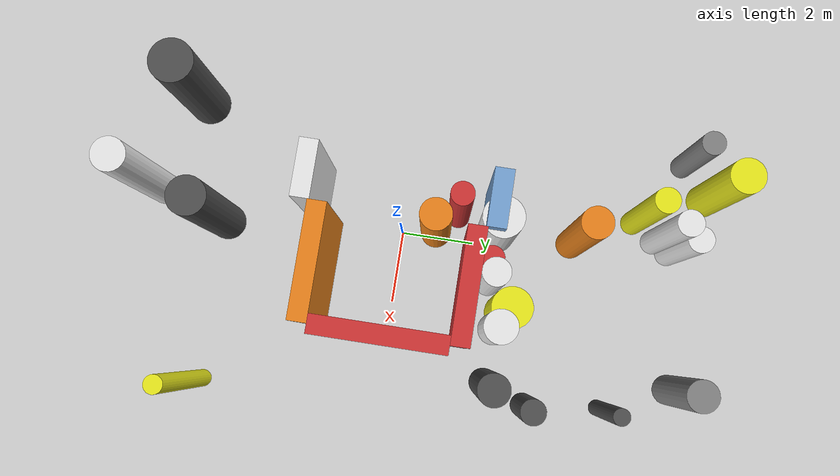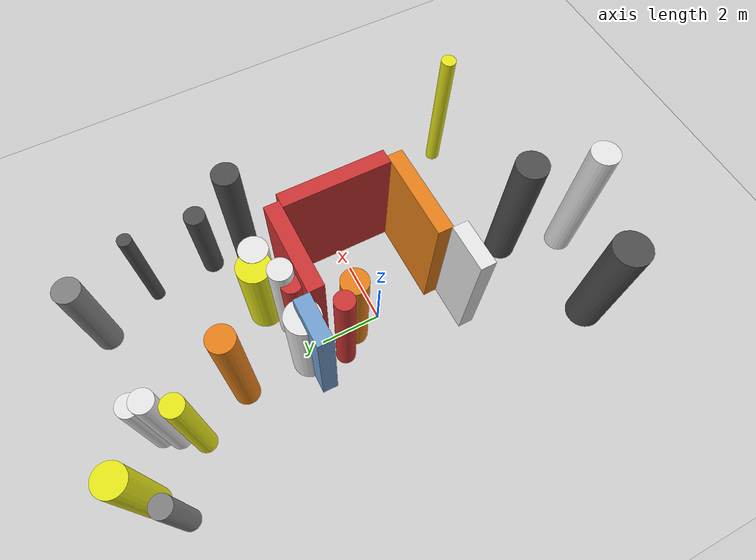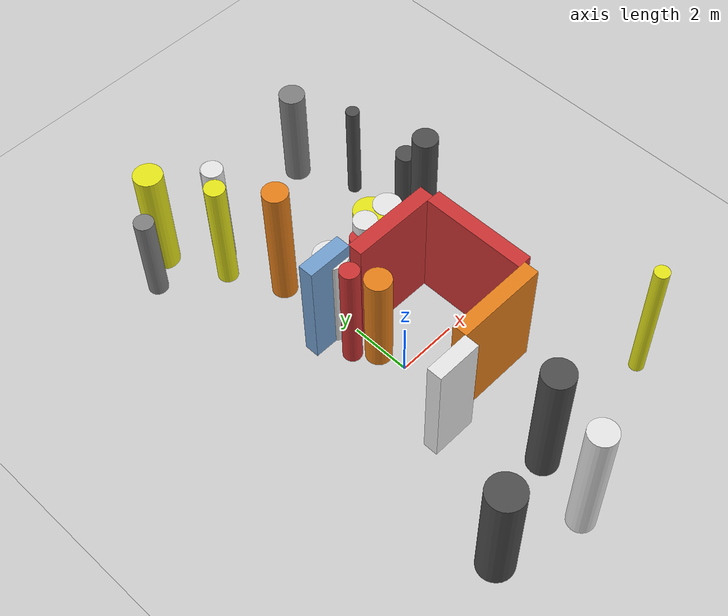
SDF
<?xml version='1.0'?>
<sdf version='1.6'>
  <world name='routeA_rl_v1__dense_recovery__rl_train__cul_de_sac_trap__000080'>
    <!-- Sun light -->
    <light name='sun' type='directional'>
      <cast_shadows>1</cast_shadows>
      <pose>0 0 10 0 0 0</pose>
      <diffuse>0.8 0.8 0.8 1</diffuse>
      <specular>0.2 0.2 0.2 1</specular>
      <attenuation>
        <range>1000</range>
        <constant>0.9</constant>
        <linear>0.01</linear>
        <quadratic>0.001</quadratic>
      </attenuation>
      <direction>-0.5 0.1 -0.9</direction>
    </light>

    <!-- Ground plane -->
    <model name='ground_plane'>
      <static>1</static>
      <link name='link'>
        <collision name='collision'>
          <geometry>
            <plane>
              <normal>0 0 1</normal>
              <size>100 100</size>
            </plane>
          </geometry>
          <surface>
            <contact>
              <collide_bitmask>65535</collide_bitmask>
              <ode/>
            </contact>
            <friction>
              <ode>
                <mu>100</mu>
                <mu2>50</mu2>
              </ode>
              <torsional><ode/></torsional>
            </friction>
            <bounce/>
          </surface>
          <max_contacts>10</max_contacts>
        </collision>
        <visual name='visual'>
          <cast_shadows>0</cast_shadows>
          <geometry>
            <plane>
              <normal>0 0 1</normal>
              <size>100 100</size>
            </plane>
          </geometry>
          <material>
            <script>
              <uri>file://media/materials/scripts/gazebo.material</uri>
              <n>Gazebo/Grey</n>
            </script>
          </material>
        </visual>
      </link>
    </model>

    <!-- Environment -->
    <magnetic_field>6e-06 2.3e-05 -4.2e-05</magnetic_field>
    <atmosphere type='adiabatic'/>
    <physics name='default_physics' default='0' type='ode'>
      <gravity>0 0 -9.8</gravity>
      <max_step_size>0.004</max_step_size>
      <real_time_factor>1</real_time_factor>
      <real_time_update_rate>250</real_time_update_rate>
    </physics>
    <scene>
      <ambient>0.4 0.4 0.4 1</ambient>
      <background>0.7 0.7 0.7 1</background>
      <shadows>1</shadows>
    </scene>
    <wind/>
    <spherical_coordinates>
      <surface_model>EARTH_WGS84</surface_model>
      <latitude_deg>0</latitude_deg>
      <longitude_deg>0</longitude_deg>
      <elevation>0</elevation>
      <heading_deg>0</heading_deg>
    </spherical_coordinates>

    <!-- ============ OBSTACLES (26) ============ -->
    <model name='trap_side_l'>
      <static>1</static>
      <link name='link'>
        <visual name='visual'>
          <geometry>
            <box>
              <size>3.0000 0.5000 4.0000</size>
            </box>
          </geometry>
          <material>
            <script>
              <n>Gazebo/Orange</n>
              <uri>file://media/materials/scripts/gazebo.material</uri>
            </script>
            <ambient>0.9 0.5 0.1 1</ambient>
          </material>
        </visual>
        <collision name='collision'>
          <geometry>
            <box>
              <size>3.0000 0.5000 4.0000</size>
            </box>
          </geometry>
          <max_contacts>10</max_contacts>
          <surface>
            <contact><ode/></contact>
            <bounce/>
            <friction>
              <ode><mu>1</mu><mu2>1</mu2></ode>
              <torsional><ode/></torsional>
            </friction>
          </surface>
        </collision>
      </link>
      <pose>1.5000 -2.0000 2.0000 0 0 0.0000</pose>
    </model>

    <model name='trap_side_r'>
      <static>1</static>
      <link name='link'>
        <visual name='visual'>
          <geometry>
            <box>
              <size>3.0000 0.5000 4.0000</size>
            </box>
          </geometry>
          <material>
            <script>
              <n>Gazebo/Red</n>
              <uri>file://media/materials/scripts/gazebo.material</uri>
            </script>
            <ambient>0.8 0.2 0.2 1</ambient>
          </material>
        </visual>
        <collision name='collision'>
          <geometry>
            <box>
              <size>3.0000 0.5000 4.0000</size>
            </box>
          </geometry>
          <max_contacts>10</max_contacts>
          <surface>
            <contact><ode/></contact>
            <bounce/>
            <friction>
              <ode><mu>1</mu><mu2>1</mu2></ode>
              <torsional><ode/></torsional>
            </friction>
          </surface>
        </collision>
      </link>
      <pose>1.5000 2.0000 2.0000 0 0 0.0000</pose>
    </model>

    <model name='trap_back'>
      <static>1</static>
      <link name='link'>
        <visual name='visual'>
          <geometry>
            <box>
              <size>0.5000 3.5000 4.0000</size>
            </box>
          </geometry>
          <material>
            <script>
              <n>Gazebo/Red</n>
              <uri>file://media/materials/scripts/gazebo.material</uri>
            </script>
            <ambient>0.8 0.2 0.2 1</ambient>
          </material>
        </visual>
        <collision name='collision'>
          <geometry>
            <box>
              <size>0.5000 3.5000 4.0000</size>
            </box>
          </geometry>
          <max_contacts>10</max_contacts>
          <surface>
            <contact><ode/></contact>
            <bounce/>
            <friction>
              <ode><mu>1</mu><mu2>1</mu2></ode>
              <torsional><ode/></torsional>
            </friction>
          </surface>
        </collision>
      </link>
      <pose>3.0000 0.0000 2.0000 0 0 0.0000</pose>
    </model>

    <model name='trap_funnel_l'>
      <static>1</static>
      <link name='link'>
        <visual name='visual'>
          <geometry>
            <box>
              <size>1.5000 0.5000 4.0000</size>
            </box>
          </geometry>
          <material>
            <script>
              <n>Gazebo/White</n>
              <uri>file://media/materials/scripts/gazebo.material</uri>
            </script>
            <ambient>0.9 0.9 0.9 1</ambient>
          </material>
        </visual>
        <collision name='collision'>
          <geometry>
            <box>
              <size>1.5000 0.5000 4.0000</size>
            </box>
          </geometry>
          <max_contacts>10</max_contacts>
          <surface>
            <contact><ode/></contact>
            <bounce/>
            <friction>
              <ode><mu>1</mu><mu2>1</mu2></ode>
              <torsional><ode/></torsional>
            </friction>
          </surface>
        </collision>
      </link>
      <pose>-0.7500 -2.4500 2.0000 0 0 0.0000</pose>
    </model>

    <model name='trap_funnel_r'>
      <static>1</static>
      <link name='link'>
        <visual name='visual'>
          <geometry>
            <box>
              <size>1.5000 0.5000 4.0000</size>
            </box>
          </geometry>
          <material>
            <script>
              <n>Gazebo/Blue</n>
              <uri>file://media/materials/scripts/gazebo.material</uri>
            </script>
            <ambient>0.447 0.624 0.812 1</ambient>
          </material>
        </visual>
        <collision name='collision'>
          <geometry>
            <box>
              <size>1.5000 0.5000 4.0000</size>
            </box>
          </geometry>
          <max_contacts>10</max_contacts>
          <surface>
            <contact><ode/></contact>
            <bounce/>
            <friction>
              <ode><mu>1</mu><mu2>1</mu2></ode>
              <torsional><ode/></torsional>
            </friction>
          </surface>
        </collision>
      </link>
      <pose>-0.7500 2.4500 2.0000 0 0 0.0000</pose>
    </model>

    <model name='trap_scatter_0'>
      <static>1</static>
      <link name='link'>
        <visual name='visual'>
          <geometry>
            <cylinder>
              <radius>0.4381</radius>
              <length>4.7769</length>
            </cylinder>
          </geometry>
          <material>
            <script>
              <n>Gazebo/White</n>
              <uri>file://media/materials/scripts/gazebo.material</uri>
            </script>
            <ambient>0.9 0.9 0.9 1</ambient>
          </material>
        </visual>
        <collision name='collision'>
          <geometry>
            <cylinder>
              <radius>0.4381</radius>
              <length>4.7769</length>
            </cylinder>
          </geometry>
          <max_contacts>10</max_contacts>
          <surface>
            <contact><ode/></contact>
            <bounce/>
            <friction>
              <ode><mu>1</mu><mu2>1</mu2></ode>
              <torsional><ode/></torsional>
            </friction>
          </surface>
        </collision>
      </link>
      <pose>-0.2213 -6.9779 2.3885 0 0 0.0000</pose>
    </model>

    <model name='trap_scatter_2'>
      <static>1</static>
      <link name='link'>
        <visual name='visual'>
          <geometry>
            <cylinder>
              <radius>0.3702</radius>
              <length>3.8663</length>
            </cylinder>
          </geometry>
          <material>
            <script>
              <n>Gazebo/White</n>
              <uri>file://media/materials/scripts/gazebo.material</uri>
            </script>
            <ambient>0.9 0.9 0.9 1</ambient>
          </material>
        </visual>
        <collision name='collision'>
          <geometry>
            <cylinder>
              <radius>0.3702</radius>
              <length>3.8663</length>
            </cylinder>
          </geometry>
          <max_contacts>10</max_contacts>
          <surface>
            <contact><ode/></contact>
            <bounce/>
            <friction>
              <ode><mu>1</mu><mu2>1</mu2></ode>
              <torsional><ode/></torsional>
            </friction>
          </surface>
        </collision>
      </link>
      <pose>1.0540 2.6164 1.9332 0 0 0.0000</pose>
    </model>

    <model name='trap_scatter_4'>
      <static>1</static>
      <link name='link'>
        <visual name='visual'>
          <geometry>
            <cylinder>
              <radius>0.4167</radius>
              <length>3.5565</length>
            </cylinder>
          </geometry>
          <material>
            <script>
              <n>Gazebo/Grey</n>
              <uri>file://media/materials/scripts/gazebo.material</uri>
            </script>
            <ambient>0.5 0.5 0.5 1</ambient>
          </material>
        </visual>
        <collision name='collision'>
          <geometry>
            <cylinder>
              <radius>0.4167</radius>
              <length>3.5565</length>
            </cylinder>
          </geometry>
          <max_contacts>10</max_contacts>
          <surface>
            <contact><ode/></contact>
            <bounce/>
            <friction>
              <ode><mu>1</mu><mu2>1</mu2></ode>
              <torsional><ode/></torsional>
            </friction>
          </surface>
        </collision>
      </link>
      <pose>3.2689 8.0449 1.7782 0 0 0.0000</pose>
    </model>

    <model name='trap_scatter_5'>
      <static>1</static>
      <link name='link'>
        <visual name='visual'>
          <geometry>
            <cylinder>
              <radius>0.5015</radius>
              <length>4.6057</length>
            </cylinder>
          </geometry>
          <material>
            <script>
              <n>Gazebo/DarkGrey</n>
              <uri>file://media/materials/scripts/gazebo.material</uri>
            </script>
            <ambient>0.3 0.3 0.3 1</ambient>
          </material>
        </visual>
        <collision name='collision'>
          <geometry>
            <cylinder>
              <radius>0.5015</radius>
              <length>4.6057</length>
            </cylinder>
          </geometry>
          <max_contacts>10</max_contacts>
          <surface>
            <contact><ode/></contact>
            <bounce/>
            <friction>
              <ode><mu>1</mu><mu2>1</mu2></ode>
              <torsional><ode/></torsional>
            </friction>
          </surface>
        </collision>
      </link>
      <pose>0.4549 -5.0151 2.3029 0 0 0.0000</pose>
    </model>

    <model name='trap_scatter_6'>
      <static>1</static>
      <link name='link'>
        <visual name='visual'>
          <geometry>
            <cylinder>
              <radius>0.4063</radius>
              <length>4.5648</length>
            </cylinder>
          </geometry>
          <material>
            <script>
              <n>Gazebo/Orange</n>
              <uri>file://media/materials/scripts/gazebo.material</uri>
            </script>
            <ambient>0.9 0.5 0.1 1</ambient>
          </material>
        </visual>
        <collision name='collision'>
          <geometry>
            <cylinder>
              <radius>0.4063</radius>
              <length>4.5648</length>
            </cylinder>
          </geometry>
          <max_contacts>10</max_contacts>
          <surface>
            <contact><ode/></contact>
            <bounce/>
            <friction>
              <ode><mu>1</mu><mu2>1</mu2></ode>
              <torsional><ode/></torsional>
            </friction>
          </surface>
        </collision>
      </link>
      <pose>-0.4075 4.7852 2.2824 0 0 0.0000</pose>
    </model>

    <model name='trap_scatter_7'>
      <static>1</static>
      <link name='link'>
        <visual name='visual'>
          <geometry>
            <cylinder>
              <radius>0.4586</radius>
              <length>3.9629</length>
            </cylinder>
          </geometry>
          <material>
            <script>
              <n>Gazebo/Yellow</n>
              <uri>file://media/materials/scripts/gazebo.material</uri>
            </script>
            <ambient>0.9 0.9 0.1 1</ambient>
          </material>
        </visual>
        <collision name='collision'>
          <geometry>
            <cylinder>
              <radius>0.4586</radius>
              <length>3.9629</length>
            </cylinder>
          </geometry>
          <max_contacts>10</max_contacts>
          <surface>
            <contact><ode/></contact>
            <bounce/>
            <friction>
              <ode><mu>1</mu><mu2>1</mu2></ode>
              <torsional><ode/></torsional>
            </friction>
          </surface>
        </collision>
      </link>
      <pose>-2.2254 8.3902 1.9815 0 0 0.0000</pose>
    </model>

    <model name='trap_scatter_8'>
      <static>1</static>
      <link name='link'>
        <visual name='visual'>
          <geometry>
            <cylinder>
              <radius>0.5779</radius>
              <length>4.1593</length>
            </cylinder>
          </geometry>
          <material>
            <script>
              <n>Gazebo/DarkGrey</n>
              <uri>file://media/materials/scripts/gazebo.material</uri>
            </script>
            <ambient>0.3 0.3 0.3 1</ambient>
          </material>
        </visual>
        <collision name='collision'>
          <geometry>
            <cylinder>
              <radius>0.5779</radius>
              <length>4.1593</length>
            </cylinder>
          </geometry>
          <max_contacts>10</max_contacts>
          <surface>
            <contact><ode/></contact>
            <bounce/>
            <friction>
              <ode><mu>1</mu><mu2>1</mu2></ode>
              <torsional><ode/></torsional>
            </friction>
          </surface>
        </collision>
      </link>
      <pose>-2.8743 -6.1476 2.0796 0 0 0.0000</pose>
    </model>

    <model name='trap_scatter_9'>
      <static>1</static>
      <link name='link'>
        <visual name='visual'>
          <geometry>
            <cylinder>
              <radius>0.3395</radius>
              <length>4.0798</length>
            </cylinder>
          </geometry>
          <material>
            <script>
              <n>Gazebo/White</n>
              <uri>file://media/materials/scripts/gazebo.material</uri>
            </script>
            <ambient>0.9 0.9 0.9 1</ambient>
          </material>
        </visual>
        <collision name='collision'>
          <geometry>
            <cylinder>
              <radius>0.3395</radius>
              <length>4.0798</length>
            </cylinder>
          </geometry>
          <max_contacts>10</max_contacts>
          <surface>
            <contact><ode/></contact>
            <bounce/>
            <friction>
              <ode><mu>1</mu><mu2>1</mu2></ode>
              <torsional><ode/></torsional>
            </friction>
          </surface>
        </collision>
      </link>
      <pose>-0.8215 7.1094 2.0399 0 0 0.0000</pose>
    </model>

    <model name='trap_scatter_11'>
      <static>1</static>
      <link name='link'>
        <visual name='visual'>
          <geometry>
            <cylinder>
              <radius>0.3188</radius>
              <length>3.5075</length>
            </cylinder>
          </geometry>
          <material>
            <script>
              <n>Gazebo/Red</n>
              <uri>file://media/materials/scripts/gazebo.material</uri>
            </script>
            <ambient>0.8 0.2 0.2 1</ambient>
          </material>
        </visual>
        <collision name='collision'>
          <geometry>
            <cylinder>
              <radius>0.3188</radius>
              <length>3.5075</length>
            </cylinder>
          </geometry>
          <max_contacts>10</max_contacts>
          <surface>
            <contact><ode/></contact>
            <bounce/>
            <friction>
              <ode><mu>1</mu><mu2>1</mu2></ode>
              <torsional><ode/></torsional>
            </friction>
          </surface>
        </collision>
      </link>
      <pose>0.6967 2.4771 1.7537 0 0 0.0000</pose>
    </model>

    <model name='trap_scatter_12'>
      <static>1</static>
      <link name='link'>
        <visual name='visual'>
          <geometry>
            <cylinder>
              <radius>0.5378</radius>
              <length>3.1844</length>
            </cylinder>
          </geometry>
          <material>
            <script>
              <n>Gazebo/Yellow</n>
              <uri>file://media/materials/scripts/gazebo.material</uri>
            </script>
            <ambient>0.9 0.9 0.1 1</ambient>
          </material>
        </visual>
        <collision name='collision'>
          <geometry>
            <cylinder>
              <radius>0.5378</radius>
              <length>3.1844</length>
            </cylinder>
          </geometry>
          <max_contacts>10</max_contacts>
          <surface>
            <contact><ode/></contact>
            <bounce/>
            <friction>
              <ode><mu>1</mu><mu2>1</mu2></ode>
              <torsional><ode/></torsional>
            </friction>
          </surface>
        </collision>
      </link>
      <pose>1.8238 3.1675 1.5922 0 0 0.0000</pose>
    </model>

    <model name='trap_scatter_13'>
      <static>1</static>
      <link name='link'>
        <visual name='visual'>
          <geometry>
            <cylinder>
              <radius>0.5446</radius>
              <length>3.5448</length>
            </cylinder>
          </geometry>
          <material>
            <script>
              <n>Gazebo/White</n>
              <uri>file://media/materials/scripts/gazebo.material</uri>
            </script>
            <ambient>0.9 0.9 0.9 1</ambient>
          </material>
        </visual>
        <collision name='collision'>
          <geometry>
            <cylinder>
              <radius>0.5446</radius>
              <length>3.5448</length>
            </cylinder>
          </geometry>
          <max_contacts>10</max_contacts>
          <surface>
            <contact><ode/></contact>
            <bounce/>
            <friction>
              <ode><mu>1</mu><mu2>1</mu2></ode>
              <torsional><ode/></torsional>
            </friction>
          </surface>
        </collision>
      </link>
      <pose>-0.3639 2.6142 1.7724 0 0 0.0000</pose>
    </model>

    <model name='trap_scatter_14'>
      <static>1</static>
      <link name='link'>
        <visual name='visual'>
          <geometry>
            <cylinder>
              <radius>0.4215</radius>
              <length>3.7413</length>
            </cylinder>
          </geometry>
          <material>
            <script>
              <n>Gazebo/Orange</n>
              <uri>file://media/materials/scripts/gazebo.material</uri>
            </script>
            <ambient>0.9 0.5 0.1 1</ambient>
          </material>
        </visual>
        <collision name='collision'>
          <geometry>
            <cylinder>
              <radius>0.4215</radius>
              <length>3.7413</length>
            </cylinder>
          </geometry>
          <max_contacts>10</max_contacts>
          <surface>
            <contact><ode/></contact>
            <bounce/>
            <friction>
              <ode><mu>1</mu><mu2>1</mu2></ode>
              <torsional><ode/></torsional>
            </friction>
          </surface>
        </collision>
      </link>
      <pose>-0.1446 0.9295 1.8707 0 0 0.0000</pose>
    </model>

    <model name='trap_scatter_15'>
      <static>1</static>
      <link name='link'>
        <visual name='visual'>
          <geometry>
            <cylinder>
              <radius>0.3167</radius>
              <length>3.1580</length>
            </cylinder>
          </geometry>
          <material>
            <script>
              <n>Gazebo/Grey</n>
              <uri>file://media/materials/scripts/gazebo.material</uri>
            </script>
            <ambient>0.5 0.5 0.5 1</ambient>
          </material>
        </visual>
        <collision name='collision'>
          <geometry>
            <cylinder>
              <radius>0.3167</radius>
              <length>3.1580</length>
            </cylinder>
          </geometry>
          <max_contacts>10</max_contacts>
          <surface>
            <contact><ode/></contact>
            <bounce/>
            <friction>
              <ode><mu>1</mu><mu2>1</mu2></ode>
              <torsional><ode/></torsional>
            </friction>
          </surface>
        </collision>
      </link>
      <pose>-3.1315 7.6813 1.5790 0 0 0.0000</pose>
    </model>

    <model name='trap_scatter_16'>
      <static>1</static>
      <link name='link'>
        <visual name='visual'>
          <geometry>
            <cylinder>
              <radius>0.3354</radius>
              <length>3.0309</length>
            </cylinder>
          </geometry>
          <material>
            <script>
              <n>Gazebo/DarkGrey</n>
              <uri>file://media/materials/scripts/gazebo.material</uri>
            </script>
            <ambient>0.3 0.3 0.3 1</ambient>
          </material>
        </visual>
        <collision name='collision'>
          <geometry>
            <cylinder>
              <radius>0.3354</radius>
              <length>3.0309</length>
            </cylinder>
          </geometry>
          <max_contacts>10</max_contacts>
          <surface>
            <contact><ode/></contact>
            <bounce/>
            <friction>
              <ode><mu>1</mu><mu2>1</mu2></ode>
              <torsional><ode/></torsional>
            </friction>
          </surface>
        </collision>
      </link>
      <pose>4.3075 4.0690 1.5154 0 0 0.0000</pose>
    </model>

    <model name='trap_scatter_18'>
      <static>1</static>
      <link name='link'>
        <visual name='visual'>
          <geometry>
            <cylinder>
              <radius>0.3073</radius>
              <length>4.1249</length>
            </cylinder>
          </geometry>
          <material>
            <script>
              <n>Gazebo/Red</n>
              <uri>file://media/materials/scripts/gazebo.material</uri>
            </script>
            <ambient>0.8 0.2 0.2 1</ambient>
          </material>
        </visual>
        <collision name='collision'>
          <geometry>
            <cylinder>
              <radius>0.3073</radius>
              <length>4.1249</length>
            </cylinder>
          </geometry>
          <max_contacts>10</max_contacts>
          <surface>
            <contact><ode/></contact>
            <bounce/>
            <friction>
              <ode><mu>1</mu><mu2>1</mu2></ode>
              <torsional><ode/></torsional>
            </friction>
          </surface>
        </collision>
      </link>
      <pose>-0.6864 1.5092 2.0625 0 0 0.0000</pose>
    </model>

    <model name='trap_scatter_19'>
      <static>1</static>
      <link name='link'>
        <visual name='visual'>
          <geometry>
            <cylinder>
              <radius>0.4514</radius>
              <length>3.1987</length>
            </cylinder>
          </geometry>
          <material>
            <script>
              <n>Gazebo/White</n>
              <uri>file://media/materials/scripts/gazebo.material</uri>
            </script>
            <ambient>0.9 0.9 0.9 1</ambient>
          </material>
        </visual>
        <collision name='collision'>
          <geometry>
            <cylinder>
              <radius>0.4514</radius>
              <length>3.1987</length>
            </cylinder>
          </geometry>
          <max_contacts>10</max_contacts>
          <surface>
            <contact><ode/></contact>
            <bounce/>
            <friction>
              <ode><mu>1</mu><mu2>1</mu2></ode>
              <torsional><ode/></torsional>
            </friction>
          </surface>
        </collision>
      </link>
      <pose>2.3368 2.9642 1.5993 0 0 0.0000</pose>
    </model>

    <model name='trap_scatter_20'>
      <static>1</static>
      <link name='link'>
        <visual name='visual'>
          <geometry>
            <cylinder>
              <radius>0.3977</radius>
              <length>4.9439</length>
            </cylinder>
          </geometry>
          <material>
            <script>
              <n>Gazebo/DarkGrey</n>
              <uri>file://media/materials/scripts/gazebo.material</uri>
            </script>
            <ambient>0.3 0.3 0.3 1</ambient>
          </material>
        </visual>
        <collision name='collision'>
          <geometry>
            <cylinder>
              <radius>0.3977</radius>
              <length>4.9439</length>
            </cylinder>
          </geometry>
          <max_contacts>10</max_contacts>
          <surface>
            <contact><ode/></contact>
            <bounce/>
            <friction>
              <ode><mu>1</mu><mu2>1</mu2></ode>
              <torsional><ode/></torsional>
            </friction>
          </surface>
        </collision>
      </link>
      <pose>3.8523 2.8887 2.4720 0 0 0.0000</pose>
    </model>

    <model name='trap_scatter_21'>
      <static>1</static>
      <link name='link'>
        <visual name='visual'>
          <geometry>
            <cylinder>
              <radius>0.2373</radius>
              <length>4.6161</length>
            </cylinder>
          </geometry>
          <material>
            <script>
              <n>Gazebo/Yellow</n>
              <uri>file://media/materials/scripts/gazebo.material</uri>
            </script>
            <ambient>0.9 0.9 0.1 1</ambient>
          </material>
        </visual>
        <collision name='collision'>
          <geometry>
            <cylinder>
              <radius>0.2373</radius>
              <length>4.6161</length>
            </cylinder>
          </geometry>
          <max_contacts>10</max_contacts>
          <surface>
            <contact><ode/></contact>
            <bounce/>
            <friction>
              <ode><mu>1</mu><mu2>1</mu2></ode>
              <torsional><ode/></torsional>
            </friction>
          </surface>
        </collision>
      </link>
      <pose>4.9428 -4.9385 2.3081 0 0 0.0000</pose>
    </model>

    <model name='trap_scatter_22'>
      <static>1</static>
      <link name='link'>
        <visual name='visual'>
          <geometry>
            <cylinder>
              <radius>0.2199</radius>
              <length>3.5784</length>
            </cylinder>
          </geometry>
          <material>
            <script>
              <n>Gazebo/DarkGrey</n>
              <uri>file://media/materials/scripts/gazebo.material</uri>
            </script>
            <ambient>0.3 0.3 0.3 1</ambient>
          </material>
        </visual>
        <collision name='collision'>
          <geometry>
            <cylinder>
              <radius>0.2199</radius>
              <length>3.5784</length>
            </cylinder>
          </geometry>
          <max_contacts>10</max_contacts>
          <surface>
            <contact><ode/></contact>
            <bounce/>
            <friction>
              <ode><mu>1</mu><mu2>1</mu2></ode>
              <torsional><ode/></torsional>
            </friction>
          </surface>
        </collision>
      </link>
      <pose>4.0636 6.1418 1.7892 0 0 0.0000</pose>
    </model>

    <model name='trap_scatter_23'>
      <static>1</static>
      <link name='link'>
        <visual name='visual'>
          <geometry>
            <cylinder>
              <radius>0.3401</radius>
              <length>3.5132</length>
            </cylinder>
          </geometry>
          <material>
            <script>
              <n>Gazebo/White</n>
              <uri>file://media/materials/scripts/gazebo.material</uri>
            </script>
            <ambient>0.9 0.9 0.9 1</ambient>
          </material>
        </visual>
        <collision name='collision'>
          <geometry>
            <cylinder>
              <radius>0.3401</radius>
              <length>3.5132</length>
            </cylinder>
          </geometry>
          <max_contacts>10</max_contacts>
          <surface>
            <contact><ode/></contact>
            <bounce/>
            <friction>
              <ode><mu>1</mu><mu2>1</mu2></ode>
              <torsional><ode/></torsional>
            </friction>
          </surface>
        </collision>
      </link>
      <pose>-0.5524 7.5587 1.7566 0 0 0.0000</pose>
    </model>

    <model name='trap_scatter_24'>
      <static>1</static>
      <link name='link'>
        <visual name='visual'>
          <geometry>
            <cylinder>
              <radius>0.3284</radius>
              <length>4.1263</length>
            </cylinder>
          </geometry>
          <material>
            <script>
              <n>Gazebo/Yellow</n>
              <uri>file://media/materials/scripts/gazebo.material</uri>
            </script>
            <ambient>0.9 0.9 0.1 1</ambient>
          </material>
        </visual>
        <collision name='collision'>
          <geometry>
            <cylinder>
              <radius>0.3284</radius>
              <length>4.1263</length>
            </cylinder>
          </geometry>
          <max_contacts>10</max_contacts>
          <surface>
            <contact><ode/></contact>
            <bounce/>
            <friction>
              <ode><mu>1</mu><mu2>1</mu2></ode>
              <torsional><ode/></torsional>
            </friction>
          </surface>
        </collision>
      </link>
      <pose>-1.2849 6.4687 2.0632 0 0 0.0000</pose>
    </model>

    <!-- GUI camera -->
    <gui fullscreen='0'>
      <camera name='user_camera'>
        <pose>-15 0 18 0 0.85 0.15</pose>
        <view_controller>orbit</view_controller>
        <projection_type>perspective</projection_type>
      </camera>
    </gui>
  </world>
</sdf>
